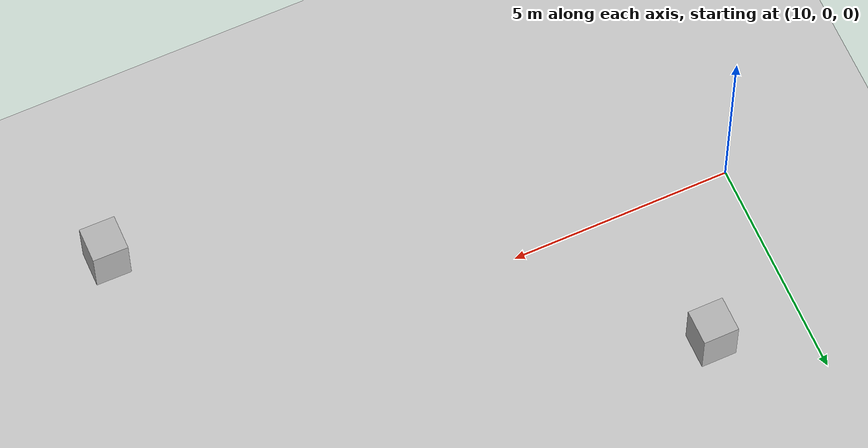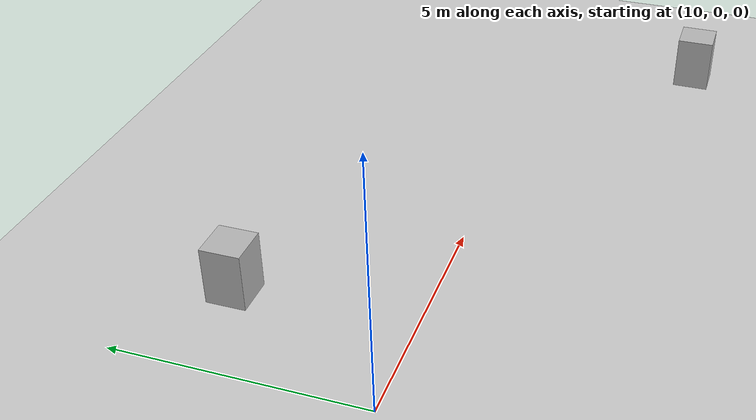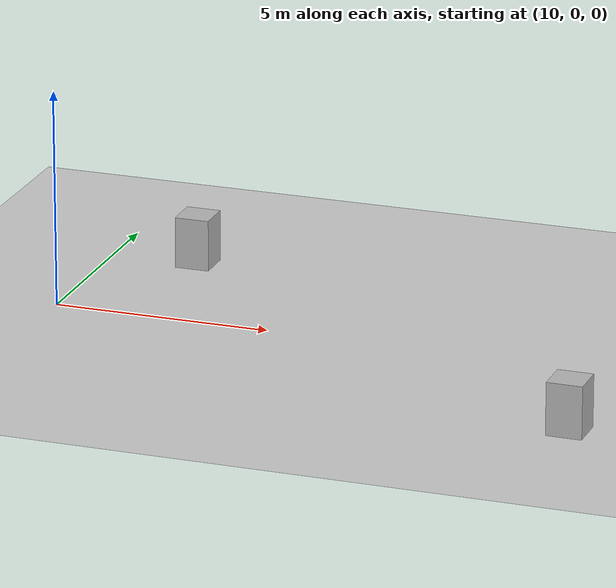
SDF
<?xml version="1.0"?>
<sdf version="1.6">
  <world name="v2-04g-cruise-s4903">
    <gravity>0 0 -9.81</gravity>
    <physics name="v2_deterministic" type="ode">
      <max_step_size>0.002</max_step_size>
      <real_time_update_rate>500</real_time_update_rate>
    </physics>
    <include>
      <uri>model://sun</uri>
    </include>
    <include>
      <uri>model://ground_plane</uri>
    </include>
    <model name="cruise-left">
      <static>true</static>
      <pose>12.039771090 3.536194364 0.600000000 0 0 0.001759091</pose>
      <link name="link">
        <collision name="collision">
          <geometry>
            <box>
              <size>0.800000 0.800000 1.200000</size>
            </box>
          </geometry>
        </collision>
        <visual name="visual">
          <geometry>
            <box>
              <size>0.800000 0.800000 1.200000</size>
            </box>
          </geometry>
        </visual>
      </link>
    </model>
    <model name="cruise-right">
      <static>true</static>
      <pose>23.008738771 -3.509484424 0.600000000 0 0 -0.009960060</pose>
      <link name="link">
        <collision name="collision">
          <geometry>
            <box>
              <size>0.800000 0.800000 1.200000</size>
            </box>
          </geometry>
        </collision>
        <visual name="visual">
          <geometry>
            <box>
              <size>0.800000 0.800000 1.200000</size>
            </box>
          </geometry>
        </visual>
      </link>
    </model>
  </world>
</sdf>
